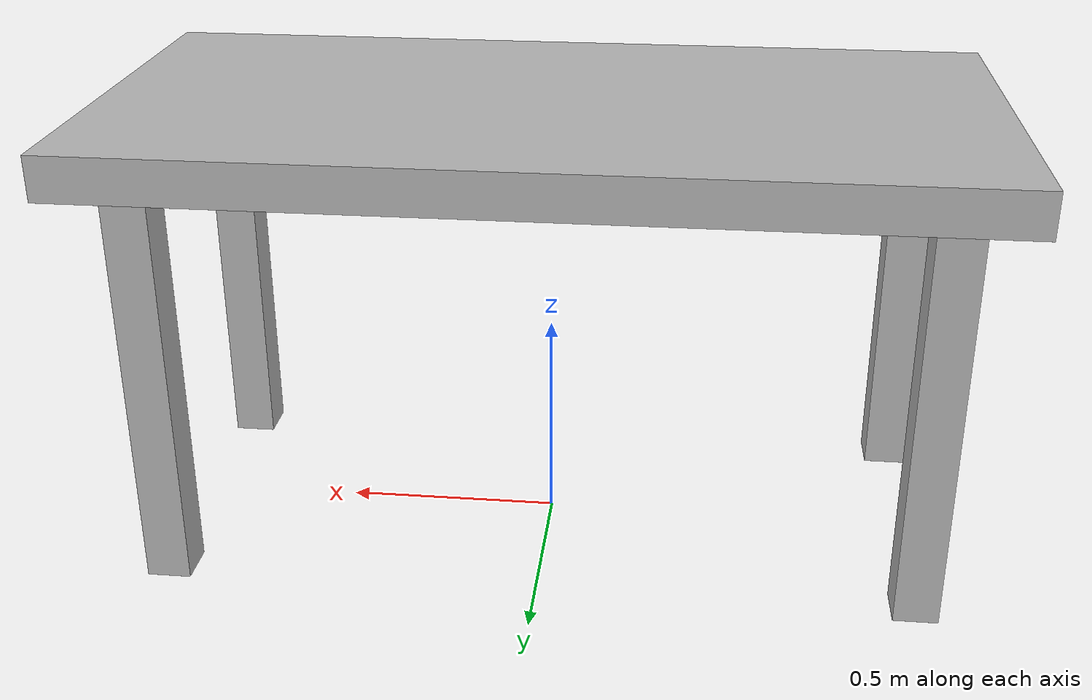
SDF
<?xml version="1.0" ?>

<sdf version="1.10">

  <model name="table">

    <static>true</static>

    <!-- TABLE TOP                   -->

    <link name="table_link">

      <collision name="table_top_collision">

        <pose>0 0 1.0 0 0 0</pose>

        <geometry>
          <box>
            <size>2.0 1.0 0.1</size>
          </box>
        </geometry>

      </collision>

      <visual name="table_top_visual">

        <pose>0 0 1.0 0 0 0</pose>

        <geometry>
          <box>
            <size>2.0 1.0 0.1</size>
          </box>
        </geometry>

      </visual>

      <!-- LEG 1                      -->

      <collision name="leg_1_collision">

        <pose>0.85 0.35 0.5 0 0 0</pose>

        <geometry>
          <box>
            <size>0.1 0.1 1.0</size>
          </box>
        </geometry>

      </collision>

      <visual name="leg_1_visual">

        <pose>0.85 0.35 0.5 0 0 0</pose>

        <geometry>
          <box>
            <size>0.1 0.1 1.0</size>
          </box>
        </geometry>

      </visual>

      <!-- LEG 2                      -->

      <collision name="leg_2_collision">

        <pose>-0.85 0.35 0.5 0 0 0</pose>

        <geometry>
          <box>
            <size>0.1 0.1 1.0</size>
          </box>
        </geometry>

      </collision>

      <visual name="leg_2_visual">

        <pose>-0.85 0.35 0.5 0 0 0</pose>

        <geometry>
          <box>
            <size>0.1 0.1 1.0</size>
          </box>
        </geometry>

      </visual>

      <!-- LEG 3                      -->

      <collision name="leg_3_collision">

        <pose>0.85 -0.35 0.5 0 0 0</pose>

        <geometry>
          <box>
            <size>0.1 0.1 1.0</size>
          </box>
        </geometry>

      </collision>

      <visual name="leg_3_visual">

        <pose>0.85 -0.35 0.5 0 0 0</pose>

        <geometry>
          <box>
            <size>0.1 0.1 1.0</size>
          </box>
        </geometry>

      </visual>

      <!-- LEG 4                      -->

      <collision name="leg_4_collision">

        <pose>-0.85 -0.35 0.5 0 0 0</pose>

        <geometry>
          <box>
            <size>0.1 0.1 1.0</size>
          </box>
        </geometry>

      </collision>

      <visual name="leg_4_visual">

        <pose>-0.85 -0.35 0.5 0 0 0</pose>

        <geometry>
          <box>
            <size>0.1 0.1 1.0</size>
          </box>
        </geometry>

      </visual>

    </link>

  </model>

</sdf>
